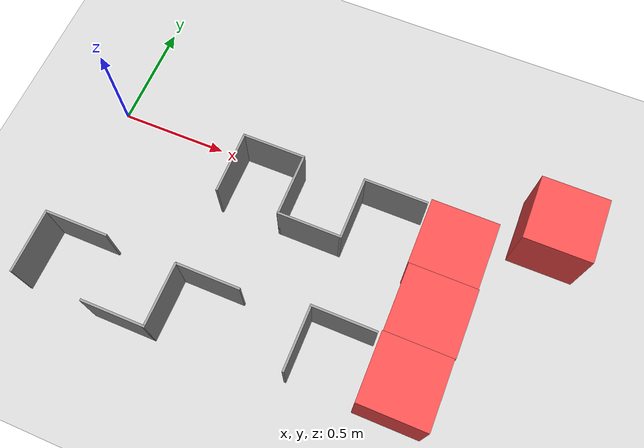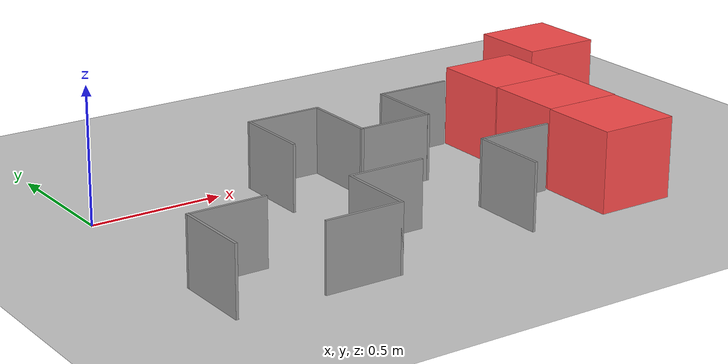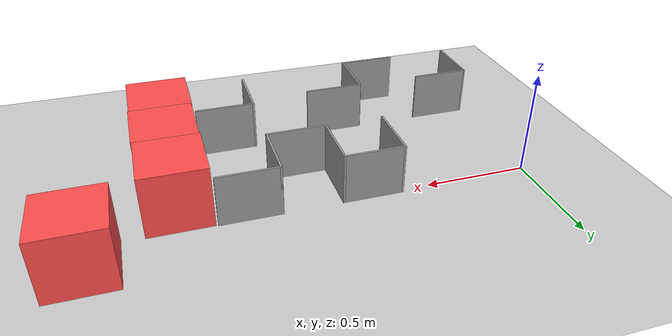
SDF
<sdf version="1.6">
 <world name="default">
  <model name="ground_plane">
   <static>1</static>
   <link name="link">
    <collision name="collision">
     <geometry><plane><normal>0 0 1</normal><size>100 100</size></plane></geometry>
     <surface><friction><ode><mu>100</mu><mu2>50</mu2></ode></friction></surface>
    </collision>
    <visual name="visual">
     <cast_shadows>0</cast_shadows>
     <geometry><plane><normal>0 0 1</normal><size>100 100</size></plane></geometry>
     <material>
      <script><uri>file://media/materials/scripts/gazebo.material</uri><name>Gazebo/Grey</name></script>
     </material>
    </visual>
   </link>
  </model>
  <model name="Box_Red_clone_3">
   <link name="link_0">
    <inertial>
     <mass>1</mass>
     <inertia>
      <ixx>0.166667</ixx>
      <ixy>0</ixy>
      <ixz>0</ixz>
      <iyy>0.166667</iyy>
      <iyz>0</iyz>
      <izz>0.166667</izz>
     </inertia>
    </inertial>
    <visual name="visual">
     <geometry><box><size>0.3 0.3 0.3</size></box></geometry>
     <material>
      <lighting>1</lighting>
      <script><uri>file://media/materials/scripts/gazebo.material</uri><name>Gazebo/Grey</name></script>
      <ambient>1 0.3 0.3 1</ambient>
      <diffuse>0.7 0.7 0.7 1</diffuse>
      <specular>0.01 0.01 0.01 1</specular>
      <emissive>0 0 0 1</emissive>
      <shader type="vertex"><normal_map>__default__</normal_map></shader>
     </material>
    </visual>
    <collision name="collision">
     <geometry><box><size>0.3 0.3 0.3</size></box></geometry>
     <surface>
      <friction>
       <ode><mu>1</mu><mu2>1</mu2><fdir1>0 0 0</fdir1><slip1>0</slip1><slip2>0</slip2></ode>
       <torsional>
        <coefficient>1</coefficient>
        <patch_radius>0</patch_radius>
        <surface_radius>0</surface_radius>
        <use_patch_radius>1</use_patch_radius>
        <ode><slip>0</slip></ode>
       </torsional>
      </friction>
      <bounce><restitution_coefficient>0</restitution_coefficient><threshold>1e+06</threshold></bounce>
      <contact>
       <collide_without_contact>0</collide_without_contact>
       <collide_without_contact_bitmask>1</collide_without_contact_bitmask>
       <collide_bitmask>1</collide_bitmask>
       <ode>
        <soft_cfm>0</soft_cfm>
        <soft_erp>0.2</soft_erp>
        <kp>1e+13</kp>
        <kd>1</kd>
        <max_vel>0.01</max_vel>
        <min_depth>0</min_depth>
       </ode>
       <bullet>
        <split_impulse>1</split_impulse>
        <split_impulse_penetration_threshold>-0.01</split_impulse_penetration_threshold>
        <soft_cfm>0</soft_cfm>
        <soft_erp>0.2</soft_erp>
        <kp>1e+13</kp>
        <kd>1</kd>
       </bullet>
      </contact>
     </surface>
    </collision>
   </link>
   <static>0</static>
   <pose>1.65551 -0.140092 0.15 0 -0 0.000199</pose>
  </model>
  <model name="Box_Red_clone_4">
   <link name="link_0">
    <inertial>
     <mass>1</mass>
     <inertia>
      <ixx>0.166667</ixx>
      <ixy>0</ixy>
      <ixz>0</ixz>
      <iyy>0.166667</iyy>
      <iyz>0</iyz>
      <izz>0.166667</izz>
     </inertia>
    </inertial>
    <visual name="visual">
     <geometry><box><size>0.3 0.3 0.3</size></box></geometry>
     <material>
      <lighting>1</lighting>
      <script><uri>file://media/materials/scripts/gazebo.material</uri><name>Gazebo/Grey</name></script>
      <ambient>1 0.3 0.3 1</ambient>
      <diffuse>0.7 0.7 0.7 1</diffuse>
      <specular>0.01 0.01 0.01 1</specular>
      <emissive>0 0 0 1</emissive>
      <shader type="vertex"><normal_map>__default__</normal_map></shader>
     </material>
    </visual>
    <collision name="collision">
     <geometry><box><size>0.3 0.3 0.3</size></box></geometry>
     <surface>
      <friction>
       <ode><mu>1</mu><mu2>1</mu2><fdir1>0 0 0</fdir1><slip1>0</slip1><slip2>0</slip2></ode>
       <torsional>
        <coefficient>1</coefficient>
        <patch_radius>0</patch_radius>
        <surface_radius>0</surface_radius>
        <use_patch_radius>1</use_patch_radius>
        <ode><slip>0</slip></ode>
       </torsional>
      </friction>
      <bounce><restitution_coefficient>0</restitution_coefficient><threshold>1e+06</threshold></bounce>
      <contact>
       <collide_without_contact>0</collide_without_contact>
       <collide_without_contact_bitmask>1</collide_without_contact_bitmask>
       <collide_bitmask>1</collide_bitmask>
       <ode>
        <soft_cfm>0</soft_cfm>
        <soft_erp>0.2</soft_erp>
        <kp>1e+13</kp>
        <kd>1</kd>
        <max_vel>0.01</max_vel>
        <min_depth>0</min_depth>
       </ode>
       <bullet>
        <split_impulse>1</split_impulse>
        <split_impulse_penetration_threshold>-0.01</split_impulse_penetration_threshold>
        <soft_cfm>0</soft_cfm>
        <soft_erp>0.2</soft_erp>
        <kp>1e+13</kp>
        <kd>1</kd>
       </bullet>
      </contact>
     </surface>
    </collision>
   </link>
   <static>0</static>
   <pose>1.65979 -0.440096 0.15 0 -0 0.000229</pose>
  </model>
  <model name="Box_Red_clone_5">
   <link name="link_0">
    <inertial>
     <mass>1</mass>
     <inertia>
      <ixx>0.166667</ixx>
      <ixy>0</ixy>
      <ixz>0</ixz>
      <iyy>0.166667</iyy>
      <iyz>0</iyz>
      <izz>0.166667</izz>
     </inertia>
    </inertial>
    <visual name="visual">
     <geometry><box><size>0.3 0.3 0.3</size></box></geometry>
     <material>
      <lighting>1</lighting>
      <script><uri>file://media/materials/scripts/gazebo.material</uri><name>Gazebo/Grey</name></script>
      <ambient>1 0.3 0.3 1</ambient>
      <diffuse>0.7 0.7 0.7 1</diffuse>
      <specular>0.01 0.01 0.01 1</specular>
      <emissive>0 0 0 1</emissive>
      <shader type="vertex"><normal_map>__default__</normal_map></shader>
     </material>
    </visual>
    <collision name="collision">
     <geometry><box><size>0.3 0.3 0.3</size></box></geometry>
     <surface>
      <friction>
       <ode><mu>1</mu><mu2>1</mu2><fdir1>0 0 0</fdir1><slip1>0</slip1><slip2>0</slip2></ode>
       <torsional>
        <coefficient>1</coefficient>
        <patch_radius>0</patch_radius>
        <surface_radius>0</surface_radius>
        <use_patch_radius>1</use_patch_radius>
        <ode><slip>0</slip></ode>
       </torsional>
      </friction>
      <bounce><restitution_coefficient>0</restitution_coefficient><threshold>1e+06</threshold></bounce>
      <contact>
       <collide_without_contact>0</collide_without_contact>
       <collide_without_contact_bitmask>1</collide_without_contact_bitmask>
       <collide_bitmask>1</collide_bitmask>
       <ode>
        <soft_cfm>0</soft_cfm>
        <soft_erp>0.2</soft_erp>
        <kp>1e+13</kp>
        <kd>1</kd>
        <max_vel>0.01</max_vel>
        <min_depth>0</min_depth>
       </ode>
       <bullet>
        <split_impulse>1</split_impulse>
        <split_impulse_penetration_threshold>-0.01</split_impulse_penetration_threshold>
        <soft_cfm>0</soft_cfm>
        <soft_erp>0.2</soft_erp>
        <kp>1e+13</kp>
        <kd>1</kd>
       </bullet>
      </contact>
     </surface>
    </collision>
   </link>
   <static>0</static>
   <pose>1.65617 -0.740156 0.15 0 -0 0.000541</pose>
  </model>
  <model name="Box_Red_clone_6">
   <link name="link_0">
    <inertial>
     <mass>1</mass>
     <inertia>
      <ixx>0.166667</ixx>
      <ixy>0</ixy>
      <ixz>0</ixz>
      <iyy>0.166667</iyy>
      <iyz>0</iyz>
      <izz>0.166667</izz>
     </inertia>
    </inertial>
    <visual name="visual">
     <geometry><box><size>0.3 0.3 0.3</size></box></geometry>
     <material>
      <lighting>1</lighting>
      <script><uri>file://media/materials/scripts/gazebo.material</uri><name>Gazebo/Grey</name></script>
      <ambient>1 0.3 0.3 1</ambient>
      <diffuse>0.7 0.7 0.7 1</diffuse>
      <specular>0.01 0.01 0.01 1</specular>
      <emissive>0 0 0 1</emissive>
      <shader type="vertex"><normal_map>__default__</normal_map></shader>
     </material>
    </visual>
    <collision name="collision">
     <geometry><box><size>0.3 0.3 0.3</size></box></geometry>
     <surface>
      <friction>
       <ode><mu>1</mu><mu2>1</mu2><fdir1>0 0 0</fdir1><slip1>0</slip1><slip2>0</slip2></ode>
       <torsional>
        <coefficient>1</coefficient>
        <patch_radius>0</patch_radius>
        <surface_radius>0</surface_radius>
        <use_patch_radius>1</use_patch_radius>
        <ode><slip>0</slip></ode>
       </torsional>
      </friction>
      <bounce><restitution_coefficient>0</restitution_coefficient><threshold>1e+06</threshold></bounce>
      <contact>
       <collide_without_contact>0</collide_without_contact>
       <collide_without_contact_bitmask>1</collide_without_contact_bitmask>
       <collide_bitmask>1</collide_bitmask>
       <ode>
        <soft_cfm>0</soft_cfm>
        <soft_erp>0.2</soft_erp>
        <kp>1e+13</kp>
        <kd>1</kd>
        <max_vel>0.01</max_vel>
        <min_depth>0</min_depth>
       </ode>
       <bullet>
        <split_impulse>1</split_impulse>
        <split_impulse_penetration_threshold>-0.01</split_impulse_penetration_threshold>
        <soft_cfm>0</soft_cfm>
        <soft_erp>0.2</soft_erp>
        <kp>1e+13</kp>
        <kd>1</kd>
       </bullet>
      </contact>
     </surface>
    </collision>
   </link>
   <static>0</static>
   <pose>2.05497 0.141218 0.15 0 -0 0.000251</pose>
  </model>
  <model name="Maze_L_LB_clone">
   <pose>1.35035 -0.132332 0 0 -0 0</pose>
   <link name="Wall_0">
    <collision name="Wall_0_Collision">
     <geometry><box><size>0.294 0.01 0.25</size></box></geometry>
     <pose>0 0 0.125 0 -0 0</pose>
    </collision>
    <visual name="Wall_0_Visual">
     <pose>0 0 0.125 0 -0 0</pose>
     <geometry><box><size>0.294 0.01 0.25</size></box></geometry>
     <material>
      <script><uri>file://media/materials/scripts/gazebo.material</uri><name>Gazebo/Grey</name></script>
      <ambient>1 1 1 1</ambient>
     </material>
     <meta><layer>0</layer></meta>
    </visual>
    <pose>0 0.142 0 0 -0 0</pose>
   </link>
   <link name="Wall_2">
    <collision name="Wall_2_Collision">
     <geometry><box><size>0.294 0.01 0.25</size></box></geometry>
     <pose>0 0 0.125 0 -0 0</pose>
    </collision>
    <visual name="Wall_2_Visual">
     <pose>0 0 0.125 0 -0 0</pose>
     <geometry><box><size>0.294 0.01 0.25</size></box></geometry>
     <material>
      <script><uri>file://media/materials/scripts/gazebo.material</uri><name>Gazebo/Grey</name></script>
      <ambient>1 1 1 1</ambient>
     </material>
     <meta><layer>0</layer></meta>
    </visual>
    <pose>-0.142 0 0 0 0 -1.5708</pose>
   </link>
   <static>1</static>
  </model>
  <model name="Maze_L_RB_clone_1">
   <pose>1.06451 -0.131951 0 0 -0 0</pose>
   <link name="Wall_0">
    <collision name="Wall_0_Collision">
     <geometry><box><size>0.294 0.01 0.25</size></box></geometry>
     <pose>0 0 0.125 0 -0 0</pose>
    </collision>
    <visual name="Wall_0_Visual">
     <pose>0 0 0.125 0 -0 0</pose>
     <geometry><box><size>0.294 0.01 0.25</size></box></geometry>
     <material>
      <script><uri>file://media/materials/scripts/gazebo.material</uri><name>Gazebo/Grey</name></script>
      <ambient>1 1 1 1</ambient>
     </material>
     <meta><layer>0</layer></meta>
    </visual>
    <pose>0 -0.142 0 0 -0 0</pose>
   </link>
   <link name="Wall_2">
    <collision name="Wall_2_Collision">
     <geometry><box><size>0.294 0.01 0.25</size></box></geometry>
     <pose>0 0 0.125 0 -0 0</pose>
    </collision>
    <visual name="Wall_2_Visual">
     <pose>0 0 0.125 0 -0 0</pose>
     <geometry><box><size>0.294 0.01 0.25</size></box></geometry>
     <material>
      <script><uri>file://media/materials/scripts/gazebo.material</uri><name>Gazebo/Grey</name></script>
      <ambient>1 1 1 1</ambient>
     </material>
     <meta><layer>0</layer></meta>
    </visual>
    <pose>-0.142 0 0 0 -0 1.5708</pose>
   </link>
   <static>1</static>
  </model>
  <model name="Maze_L_LB_clone_0">
   <pose>0.778988 -0.132321 0 0 -0 0</pose>
   <link name="Wall_0">
    <collision name="Wall_0_Collision">
     <geometry><box><size>0.294 0.01 0.25</size></box></geometry>
     <pose>0 0 0.125 0 -0 0</pose>
    </collision>
    <visual name="Wall_0_Visual">
     <pose>0 0 0.125 0 -0 0</pose>
     <geometry><box><size>0.294 0.01 0.25</size></box></geometry>
     <material>
      <script><uri>file://media/materials/scripts/gazebo.material</uri><name>Gazebo/Grey</name></script>
      <ambient>1 1 1 1</ambient>
     </material>
     <meta><layer>0</layer></meta>
    </visual>
    <pose>0 0.142 0 0 -0 0</pose>
   </link>
   <link name="Wall_2">
    <collision name="Wall_2_Collision">
     <geometry><box><size>0.294 0.01 0.25</size></box></geometry>
     <pose>0 0 0.125 0 -0 0</pose>
    </collision>
    <visual name="Wall_2_Visual">
     <pose>0 0 0.125 0 -0 0</pose>
     <geometry><box><size>0.294 0.01 0.25</size></box></geometry>
     <material>
      <script><uri>file://media/materials/scripts/gazebo.material</uri><name>Gazebo/Grey</name></script>
      <ambient>1 1 1 1</ambient>
     </material>
     <meta><layer>0</layer></meta>
    </visual>
    <pose>-0.142 0 0 0 0 -1.5708</pose>
   </link>
   <static>1</static>
  </model>
  <model name="Maze_L_LB_clone_1">
   <pose>1.34781 -0.734464 0 0 -0 0</pose>
   <link name="Wall_0">
    <collision name="Wall_0_Collision">
     <geometry><box><size>0.294 0.01 0.25</size></box></geometry>
     <pose>0 0 0.125 0 -0 0</pose>
    </collision>
    <visual name="Wall_0_Visual">
     <pose>0 0 0.125 0 -0 0</pose>
     <geometry><box><size>0.294 0.01 0.25</size></box></geometry>
     <material>
      <script><uri>file://media/materials/scripts/gazebo.material</uri><name>Gazebo/Grey</name></script>
      <ambient>1 1 1 1</ambient>
     </material>
     <meta><layer>0</layer></meta>
    </visual>
    <pose>0 0.142 0 0 -0 0</pose>
   </link>
   <link name="Wall_2">
    <collision name="Wall_2_Collision">
     <geometry><box><size>0.294 0.01 0.25</size></box></geometry>
     <pose>0 0 0.125 0 -0 0</pose>
    </collision>
    <visual name="Wall_2_Visual">
     <pose>0 0 0.125 0 -0 0</pose>
     <geometry><box><size>0.294 0.01 0.25</size></box></geometry>
     <material>
      <script><uri>file://media/materials/scripts/gazebo.material</uri><name>Gazebo/Grey</name></script>
      <ambient>1 1 1 1</ambient>
     </material>
     <meta><layer>0</layer></meta>
    </visual>
    <pose>-0.142 0 0 0 0 -1.5708</pose>
   </link>
   <static>1</static>
  </model>
  <model name="Maze_L_RU_clone">
   <pose>0.479452 -0.784371 0 0 -0 0</pose>
   <link name="Wall_11">
    <collision name="Wall_11_Collision">
     <geometry><box><size>0.294 0.01 0.25</size></box></geometry>
     <pose>0 0 0.125 0 -0 0</pose>
    </collision>
    <visual name="Wall_11_Visual">
     <pose>0 0 0.125 0 -0 0</pose>
     <geometry><box><size>0.294 0.01 0.25</size></box></geometry>
     <material>
      <script><uri>file://media/materials/scripts/gazebo.material</uri><name>Gazebo/Grey</name></script>
      <ambient>1 1 1 1</ambient>
     </material>
     <meta><layer>0</layer></meta>
    </visual>
    <pose>0 -0.142 0 0 -0 0</pose>
   </link>
   <link name="Wall_12">
    <collision name="Wall_12_Collision">
     <geometry><box><size>0.294 0.01 0.25</size></box></geometry>
     <pose>0 0 0.125 0 -0 0</pose>
    </collision>
    <visual name="Wall_12_Visual">
     <pose>0 0 0.125 0 -0 0</pose>
     <geometry><box><size>0.294 0.01 0.25</size></box></geometry>
     <material>
      <script><uri>file://media/materials/scripts/gazebo.material</uri><name>Gazebo/Grey</name></script>
      <ambient>1 1 1 1</ambient>
     </material>
     <meta><layer>0</layer></meta>
    </visual>
    <pose>0.142 0 0 0 -0 1.5708</pose>
   </link>
   <static>1</static>
  </model>
  <model name="Maze_I_V_clone_0">
   <pose>0.765722 -0.640246 0 0 -0 0</pose>
   <link name="Wall_0">
    <collision name="Wall_0_Collision">
     <geometry><box><size>0.294 0.01 0.25</size></box></geometry>
     <pose>0 0 0.125 0 -0 0</pose>
    </collision>
    <visual name="Wall_0_Visual">
     <pose>0 0 0.125 0 -0 0</pose>
     <geometry><box><size>0.294 0.01 0.25</size></box></geometry>
     <material>
      <script><uri>file://media/materials/scripts/gazebo.material</uri><name>Gazebo/Grey</name></script>
      <ambient>1 1 1 1</ambient>
     </material>
     <meta><layer>0</layer></meta>
    </visual>
   </link>
   <static>1</static>
  </model>
  <model name="Maze_L_LB_clone_3">
   <pose>0.152592 -0.783376 0 0 -0 0</pose>
   <link name="Wall_0">
    <collision name="Wall_0_Collision">
     <geometry><box><size>0.294 0.01 0.25</size></box></geometry>
     <pose>0 0 0.125 0 -0 0</pose>
    </collision>
    <visual name="Wall_0_Visual">
     <pose>0 0 0.125 0 -0 0</pose>
     <geometry><box><size>0.294 0.01 0.25</size></box></geometry>
     <material>
      <script><uri>file://media/materials/scripts/gazebo.material</uri><name>Gazebo/Grey</name></script>
      <ambient>1 1 1 1</ambient>
     </material>
     <meta><layer>0</layer></meta>
    </visual>
    <pose>0 0.142 0 0 -0 0</pose>
   </link>
   <link name="Wall_2">
    <collision name="Wall_2_Collision">
     <geometry><box><size>0.294 0.01 0.25</size></box></geometry>
     <pose>0 0 0.125 0 -0 0</pose>
    </collision>
    <visual name="Wall_2_Visual">
     <pose>0 0 0.125 0 -0 0</pose>
     <geometry><box><size>0.294 0.01 0.25</size></box></geometry>
     <material>
      <script><uri>file://media/materials/scripts/gazebo.material</uri><name>Gazebo/Grey</name></script>
      <ambient>1 1 1 1</ambient>
     </material>
     <meta><layer>0</layer></meta>
    </visual>
    <pose>-0.142 0 0 0 0 -1.5708</pose>
   </link>
   <static>1</static>
  </model>
 </world>
</sdf>
